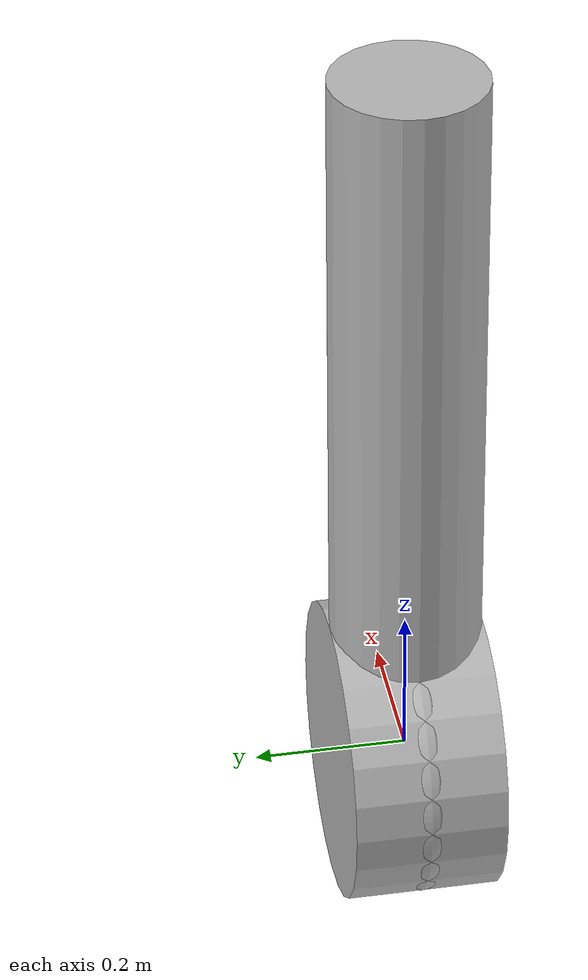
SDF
<?xml version='1.0' ?>

<!-- THIS FILE IS GENERATED FROM segway.rsdf -->

<sdf version='1.6'>
  <model name='Segway'>
    <link name='wheel'>
      <pose>0 0 0 0 0 0</pose>
      <inertial>
        <mass>10.0</mass>
        <inertia>
          <ixx>0.13333333333333336</ixx>
          <iyy>0.20000000000000004</iyy>
          <izz>0.13333333333333336</izz>
          <ixy>0</ixy><ixz>0</ixz><iyz>0</iyz>
        </inertia>
      </inertial>

      <visual name='vis_wheel'>
        <pose>0 0 0 0 0 0</pose>
        <geometry>
          <mesh>
            <uri>torus.obj</uri>
            <scale>0.2 0.2 0.2</scale>
          </mesh>
        </geometry>
      </visual>
      <visual name='vis_wheel2'>
        <pose>0 0 0 1.570795 0 0</pose>
        <geometry>
          <cylinder>
            <radius>0.2</radius>
            <length>0.2</length>
          </cylinder>
        </geometry>
      </visual>
      <collision name='col_wheel'>
        <pose>0 0 0 1.570795 0 0</pose>
        <geometry>
          <cylinder>
            <radius>0.2</radius>
            <length>0.2</length>
          </cylinder>
        </geometry>
      </collision>

    </link>

    <link name='pole'>
      <gravity>true</gravity>
      <self_collide>0</self_collide>
      <pose>0 0 0.5 0 0 0</pose>
      <inertial>
          <mass>50.0</mass>
          <inertia>
            <ixx>0</ixx>
            <iyy>16.666666666666664</iyy>
            <izz>16.666666666666664</izz>
            <ixy>0</ixy><ixz>0</ixz><iyz>0</iyz>
          </inertia>
      </inertial>

      <visual name='vis_cylinder'>
        <pose>0 0 0 0 0 0</pose>
        <geometry>
          <cylinder>
            <radius>0.1</radius>
            <length>1.0</length>
          </cylinder>
        </geometry>
      </visual>
      <collision name='col_cylinder'>
        <pose>0 0 0 0 0 0</pose>
        <geometry>
          <cylinder>
            <radius>0.1</radius>
            <length>1.0</length>
          </cylinder>
        </geometry>
      </collision>
    </link>

    <link name='x_dummy'>
      <pose>0 0 0 0 0 0</pose>
      <inertial>
        <mass>1e-6</mass>
      </inertial>
    </link>

    <link name='z_dummy'>
      <pose>0 0 0 0 0 0</pose>
      <inertial>
        <mass>1e-6</mass>
      </inertial>
    </link>

    <joint name='z' type='prismatic'>
      <parent>world</parent>
      <child>z_dummy</child>
      <pose>0 0 0 0 0 0</pose>
      <axis>
        <xyz>0 0 1.0</xyz>
        <limit>
          <effort>0.0</effort>
        </limit>
      </axis>
    </joint>

    <joint name='x' type='prismatic'>
      <parent>z_dummy</parent>
      <child>x_dummy</child>
      <pose>0 0 0 0 0 0</pose>
      <axis>
        <xyz>1.0 0 0</xyz>
        <limit>
          <effort>0.0</effort>
        </limit>
      </axis>
    </joint>

    <joint name='theta' type='revolute'>
      <parent>x_dummy</parent>
      <child>pole</child>
      <pose>0 0 -0.5 0 0 0</pose>
      <axis>
        <xyz>0 1.0 0</xyz>
        <limit>
          <effort>0.0</effort>
        </limit>
      </axis>
    </joint>

    <joint name='wheel_pole_joint' type='revolute'>
      <!--With respect to child frame-->
      <pose>0 0 0 0 0 0</pose>
      <parent>pole</parent>
      <child>wheel</child>
      <axis>
        <xyz>0 1.0 0</xyz>
      </axis>
    </joint>

  </model>
</sdf>
